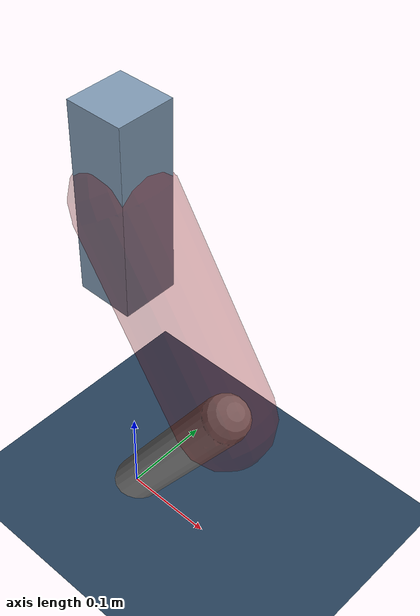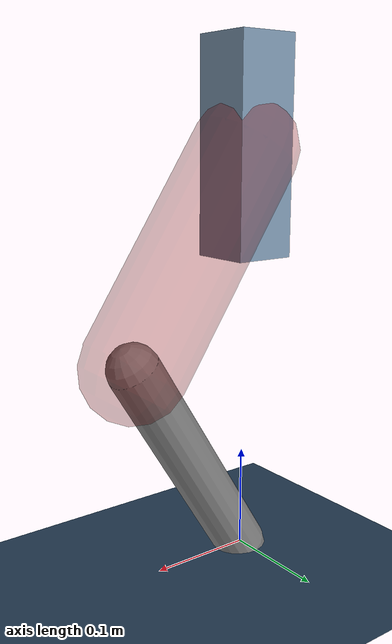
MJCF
<mujoco model="Hopper2D">
	<compiler inertiafromgeom="true" angle="radian" />
	<option timestep="0.001" integrator="implicit" cone="elliptic" solver="Newton" tolerance="1e-10" />

	<default>
		<geom contype="1" conaffinity="1" condim="3" friction="2 0.005 0.0001" solref="0.005 1" />
		<joint limited="true" damping="0.1" />
	</default>

	<asset>
		<texture name="skybox" type="skybox" builtin="gradient" rgb1=".4 .6 .8" rgb2="0 0 0" width="800" height="800" />
		<texture name="grid" type="2d" builtin="checker" rgb1=".1 .2 .3" rgb2=".2 .3 .4" width="300" height="300" mark="edge" markrgb=".2 .3 .4" />
		<material name="ground" texture="grid" texrepeat="1 1" texuniform="true" reflectance="0.1" />
		<material name="leg" rgba="0.5 0.6 0.7 1" />
	</asset>

	<worldbody>

		<geom name="floor" type="plane" size="5 5 0.25" material="ground" />

		<light directional="false" diffuse="0.8 0.8 0.8" specular="0.3 0.3 0.3" pos="0 0 2" dir="0 0 -1" />
		<light mode="targetbodycom" target="base" directional="false" diffuse="0.8 0.8 0.8" specular="0.3 0.3 0.3" pos="0 0 2" dir="0 0 -1" />

		<camera name="fixed" pos="0 -2 1" xyaxes="1 0 0 0 0 1" />
		<camera name="tracking" mode="trackcom" pos="0 -3 1" />

		<body name="root" pos="0 0 0.39548213814271904">
			<joint name="slide_x" type="slide" axis="1 0 0" range="-100 100" />
			<joint name="slide_z" type="slide" axis="0 0 1" range="0 10" />

			<body name="base" pos="0 0 0">
				<geom name="torso" type="box" size="0.03 0.03 0.1" mass="2.49" material="leg" />

				<body name="link1" pos="0 0 0" euler="0 0.9845932419693828 0">
					<joint type="hinge" axis="0 -1 0" pos="0 0 0" name="hinge1" limited="true" range="-3.14 3.14" stiffness="0" damping="0.1" />
					<geom name="thigh" type="capsule" fromto="0 0 0 0.22808437927384212 0 0" size="0.05" rgba="0.5 0 0 0.3" mass="0.8001193861119895" />

					<body name="link2" pos="0.22808437927384212 0 0" euler="0 1.1369019211703009 0">
						<joint type="hinge" axis="0 -1 0" pos="0 0 0" name="hinge2" limited="true" range="-3.14 3.14" stiffness="0" damping="0.1" />
						<geom name="shank" type="capsule" fromto="0 0 0 0.24112529282331752 0 0" size="0.025" mass="0.435200234258654" />

					</body>
				</body>
			</body>
		</body>
	</worldbody>

	<actuator>
		<motor name="torque1" joint="hinge1" ctrlrange="-42.10338407351522 42.10338407351522" ctrllimited="true" gear="1" />
		<motor name="torque2" joint="hinge2" ctrlrange="-22.49479106174985 22.49479106174985" ctrllimited="true" gear="1" />
	</actuator>
</mujoco>
